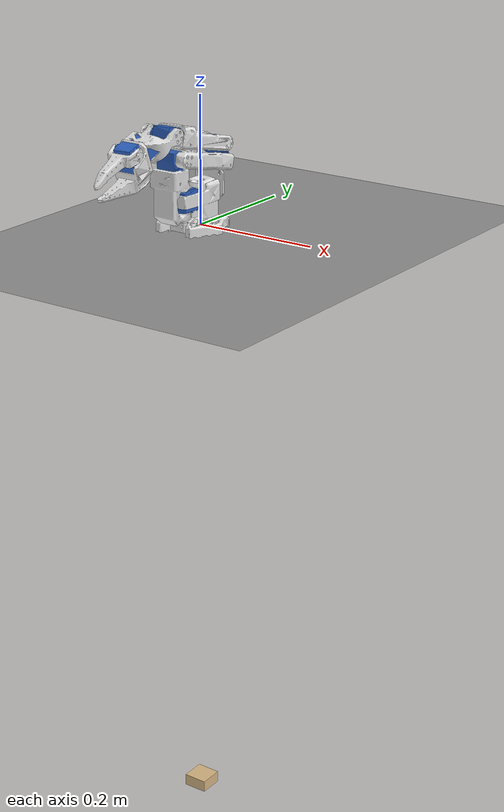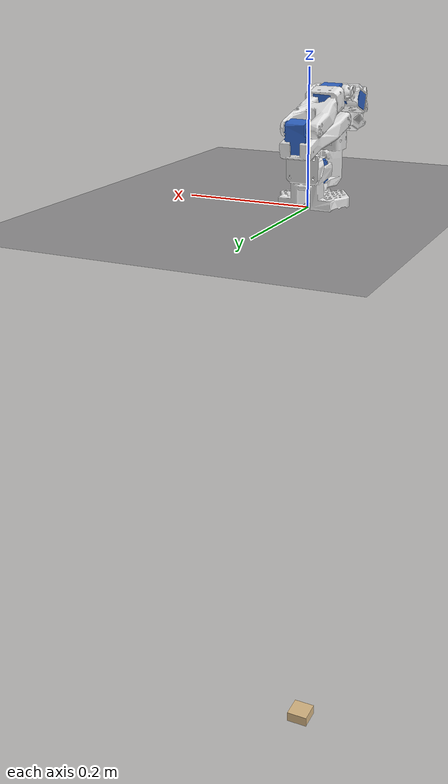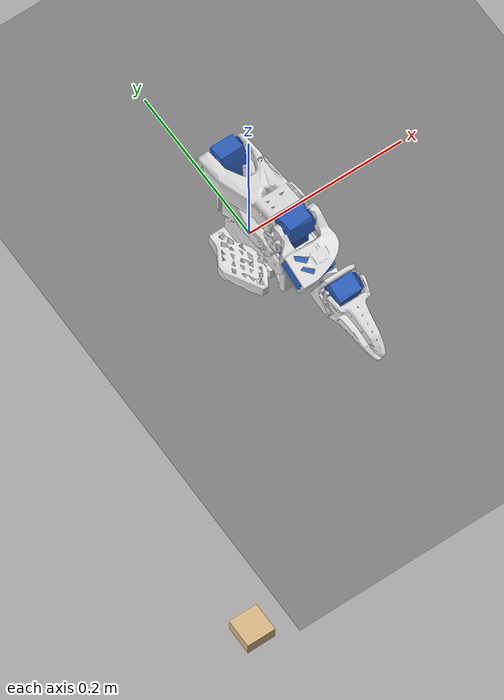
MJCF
<mujoco model="so100_scene">
  <compiler angle="radian" meshdir="assets" autolimits="true"/>

  <visual>
    <headlight ambient="0.45 0.45 0.45" diffuse="0.6 0.6 0.6" specular="0.1 0.1 0.1"/>
    <rgba haze="0.18 0.18 0.2 1"/>
    <global offwidth="1920" offheight="1080"/>
  </visual>

  <asset>
    <texture type="skybox" builtin="gradient" rgb1="0.25 0.26 0.28" rgb2="0.12 0.12 0.14" width="512" height="512"/>
    <texture name="grid" type="2d" builtin="checker" width="512" height="512" rgb1="0.18 0.18 0.2" rgb2="0.22 0.22 0.24"/>
    <material name="grid_mat" texture="grid" texrepeat="10 10" reflectance="0.05"/>

    <material name="white_print" rgba="0.88 0.88 0.88 1.0" specular="0.3" shininess="0.3"/>
    <material name="servo_mat" rgba="0.18 0.38 0.75 1.0" specular="0.6" shininess="0.5"/>
    <material name="wood_mat" rgba="0.85 0.72 0.52 1.0" specular="0.1" shininess="0.1"/>

    <mesh name="base_mesh" file="Base.stl"/>
    <mesh name="base_motor_mesh" file="Base_Motor.stl"/>
    <mesh name="rot_pitch_mesh" file="Rotation_Pitch.stl"/>
    <mesh name="rot_pitch_motor_mesh" file="Rotation_Pitch_Motor.stl"/>
    <mesh name="upper_arm_mesh" file="Upper_Arm.stl"/>
    <mesh name="upper_arm_motor_mesh" file="Upper_Arm_Motor.stl"/>
    <mesh name="lower_arm_mesh" file="Lower_Arm.stl"/>
    <mesh name="lower_arm_motor_mesh" file="Lower_Arm_Motor.stl"/>
    <mesh name="wrist_mesh" file="Wrist_Pitch_Roll.stl"/>
    <mesh name="wrist_motor_mesh" file="Wrist_Pitch_Roll_Motor.stl"/>
    <mesh name="fixed_jaw_mesh" file="Fixed_Jaw.stl"/>
    <mesh name="fixed_jaw_motor_mesh" file="Fixed_Jaw_Motor.stl"/>
    <mesh name="moving_jaw_mesh" file="Moving_Jaw.stl"/>
  </asset>

  <worldbody>
    <light pos="0 -0.6 1.8" dir="0 0.3 -1" directional="true"/>
    <geom name="floor" type="plane" size="1.5 1.5 0.05" material="grid_mat"/>

    <!-- Base -->
    <body name="base" pos="0 0 0">
      <geom type="mesh" mesh="base_mesh" material="white_print"/>
      <geom type="mesh" mesh="base_motor_mesh" material="servo_mat"/>

      <!-- Shoulder (Joint 1) -->
      <body name="shoulder" pos="0 -0.0452 0.0165" euler="1.57079 0 0">
        <joint name="shoulder_pan" type="hinge" axis="0 1 0" range="-2 2"/>
        <geom type="mesh" mesh="rot_pitch_mesh" material="white_print"/>
        <geom type="mesh" mesh="rot_pitch_motor_mesh" material="servo_mat"/>

        <!-- Upper Arm (Joint 2) -->
        <body name="upper_arm" pos="0 0.1025 0.0306" euler="-1.8 0 0">
          <joint name="shoulder_lift" type="hinge" axis="1 0 0" range="0 3.5"/>
          <geom type="mesh" mesh="upper_arm_mesh" material="white_print"/>
          <geom type="mesh" mesh="upper_arm_motor_mesh" material="servo_mat"/>

          <!-- Lower Arm (Joint 3) -->
          <body name="lower_arm" pos="0 0.11257 0.028" euler="1.57079 0 0">
            <joint name="elbow_flex" type="hinge" axis="1 0 0" range="-3.14158 0"/>
            <geom type="mesh" mesh="lower_arm_mesh" material="white_print"/>
            <geom type="mesh" mesh="lower_arm_motor_mesh" material="servo_mat"/>

            <!-- Wrist (Joint 4) -->
            <body name="wrist" pos="0 0.0052 0.1349" euler="-1 0 0">
              <joint name="wrist_flex" type="hinge" axis="1 0 0" range="-2.5 1.2"/>
              <geom type="mesh" mesh="wrist_mesh" material="white_print"/>
              <geom type="mesh" mesh="wrist_motor_mesh" material="servo_mat"/>

              <!-- Gripper (Joint 5) -->
              <body name="gripper" pos="0 -0.0601 0" euler="0 1.57079 0">
                <joint name="wrist_roll" type="hinge" axis="0 1 0" range="-3.14158 3.14158"/>
                <geom type="mesh" mesh="fixed_jaw_mesh" material="white_print"/>
                <geom type="mesh" mesh="fixed_jaw_motor_mesh" material="servo_mat"/>

                <!-- Jaw (Joint 6) -->
                <body name="jaw" pos="-0.0202 -0.0244 0" euler="0 3.14158 0">
                  <joint name="gripper_jaw" type="hinge" axis="0 0 1" range="-0.2 2.0"/>
                  <geom type="mesh" mesh="moving_jaw_mesh" material="white_print"/>
                </body>
              </body>
            </body>
          </body>
        </body>
      </body>
    </body>

    <!-- デジタルツイン同期用: 汎用物体直方体ブロック群 (最大16個)           -->
    <body name="obj_block_0" pos="0 0 -1">
      <freejoint/>
      <geom name="geom_obj_0" type="box" size="0.02 0.02 0.01" material="wood_mat" mass="0.02"/>
    </body>
    <body name="obj_block_1" pos="0 0 -1">
      <freejoint/>
      <geom name="geom_obj_1" type="box" size="0.02 0.02 0.01" material="wood_mat" mass="0.02"/>
    </body>
    <body name="obj_block_2" pos="0 0 -1">
      <freejoint/>
      <geom name="geom_obj_2" type="box" size="0.02 0.02 0.01" material="wood_mat" mass="0.02"/>
    </body>
    <body name="obj_block_3" pos="0 0 -1">
      <freejoint/>
      <geom name="geom_obj_3" type="box" size="0.02 0.02 0.01" material="wood_mat" mass="0.02"/>
    </body>
    <body name="obj_block_4" pos="0 0 -1">
      <freejoint/>
      <geom name="geom_obj_4" type="box" size="0.02 0.02 0.01" material="wood_mat" mass="0.02"/>
    </body>
    <body name="obj_block_5" pos="0 0 -1">
      <freejoint/>
      <geom name="geom_obj_5" type="box" size="0.02 0.02 0.01" material="wood_mat" mass="0.02"/>
    </body>
    <body name="obj_block_6" pos="0 0 -1">
      <freejoint/>
      <geom name="geom_obj_6" type="box" size="0.02 0.02 0.01" material="wood_mat" mass="0.02"/>
    </body>
    <body name="obj_block_7" pos="0 0 -1">
      <freejoint/>
      <geom name="geom_obj_7" type="box" size="0.02 0.02 0.01" material="wood_mat" mass="0.02"/>
    </body>
    <body name="obj_block_8" pos="0 0 -1">
      <freejoint/>
      <geom name="geom_obj_8" type="box" size="0.02 0.02 0.01" material="wood_mat" mass="0.02"/>
    </body>
    <body name="obj_block_9" pos="0 0 -1">
      <freejoint/>
      <geom name="geom_obj_9" type="box" size="0.02 0.02 0.01" material="wood_mat" mass="0.02"/>
    </body>
    <body name="obj_block_10" pos="0 0 -1">
      <freejoint/>
      <geom name="geom_obj_10" type="box" size="0.02 0.02 0.01" material="wood_mat" mass="0.02"/>
    </body>
    <body name="obj_block_11" pos="0 0 -1">
      <freejoint/>
      <geom name="geom_obj_11" type="box" size="0.02 0.02 0.01" material="wood_mat" mass="0.02"/>
    </body>
    <body name="obj_block_12" pos="0 0 -1">
      <freejoint/>
      <geom name="geom_obj_12" type="box" size="0.02 0.02 0.01" material="wood_mat" mass="0.02"/>
    </body>
    <body name="obj_block_13" pos="0 0 -1">
      <freejoint/>
      <geom name="geom_obj_13" type="box" size="0.02 0.02 0.01" material="wood_mat" mass="0.02"/>
    </body>
    <body name="obj_block_14" pos="0 0 -1">
      <freejoint/>
      <geom name="geom_obj_14" type="box" size="0.02 0.02 0.01" material="wood_mat" mass="0.02"/>
    </body>
    <body name="obj_block_15" pos="0 0 -1">
      <freejoint/>
      <geom name="geom_obj_15" type="box" size="0.02 0.02 0.01" material="wood_mat" mass="0.02"/>
    </body>
  </worldbody>
</mujoco>
